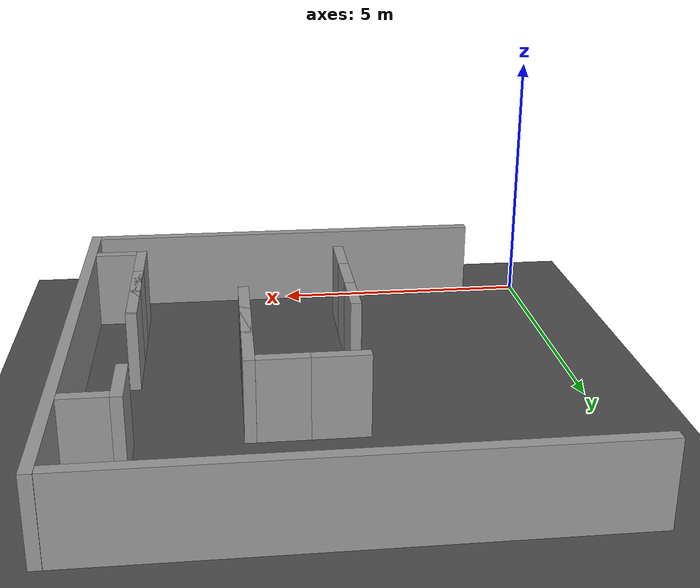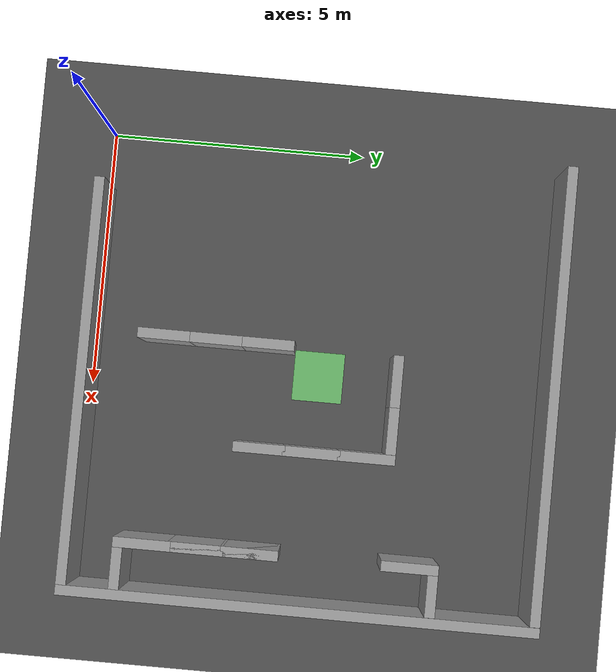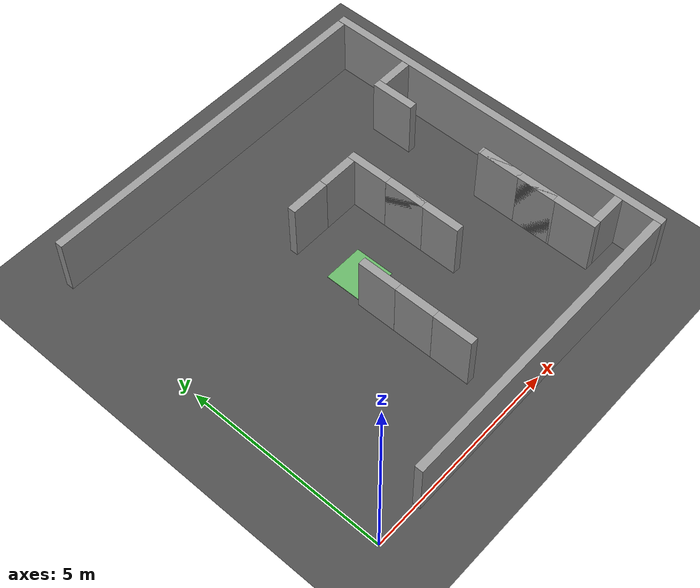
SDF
<sdf version="1.6">
 <world name="default">
  <model name="ground_plane">
   <static>1</static>
   <link name="link">
    <collision name="collision">
     <geometry><plane><normal>0 0 1</normal><size>20 20</size></plane></geometry>
     <surface><friction><ode><mu>100</mu><mu2>50</mu2></ode></friction></surface>
    </collision>
    <visual name="visual">
     <cast_shadows>0</cast_shadows>
     <geometry><plane><normal>0 0 1</normal><size>20 20</size></plane></geometry>
     <material>
      <script>
       <uri>model://asphalt_plane/materials/scripts</uri>
       <uri>model://asphalt_plane/materials/textures</uri>
       <name>vrc/asphalt</name>
      </script>
     </material>
    </visual>
   </link>
  </model>
  <model name="grey_1wall_clone">
   <static>1</static>
   <link name="link">
    <pose>0 0 0.75 0 -0 0</pose>
    <inertial>
     <mass>5</mass>
     <inertia><ixx>1</ixx><ixy>0</ixy><ixz>0</ixz><iyy>1</iyy><iyz>0</iyz><izz>1</izz></inertia>
    </inertial>
    <visual name="ModelPreview_1::link::visual_1">
     <cast_shadows>0</cast_shadows>
     <geometry><box><size>1 0.2 1.5</size></box></geometry>
     <material>
      <script>
       <uri>model://grey_wall/materials/scripts</uri>
       <uri>model://grey_wall/materials/textures</uri>
       <name>vrc/grey_wall</name>
      </script>
      <ambient>1 1 1 1</ambient>
      <diffuse>1 1 1 1</diffuse>
      <specular>0 0 0 1</specular>
      <emissive>0 0 0 1</emissive>
      <shader type="vertex"><normal_map>__default__</normal_map></shader>
     </material>
    </visual>
    <collision name="collision">
     <geometry><box><size>1 0.2 1.5</size></box></geometry>
     <surface>
      <friction>
       <ode><mu>1</mu><mu2>1</mu2><fdir1>0 0 0</fdir1><slip1>0</slip1><slip2>0</slip2></ode>
       <torsional>
        <coefficient>1</coefficient>
        <patch_radius>0</patch_radius>
        <surface_radius>0</surface_radius>
        <use_patch_radius>1</use_patch_radius>
        <ode><slip>0</slip></ode>
       </torsional>
      </friction>
      <bounce><restitution_coefficient>0</restitution_coefficient><threshold>1e+06</threshold></bounce>
      <contact>
       <collide_without_contact>0</collide_without_contact>
       <collide_without_contact_bitmask>1</collide_without_contact_bitmask>
       <collide_bitmask>1</collide_bitmask>
       <ode>
        <soft_cfm>0</soft_cfm>
        <soft_erp>0.2</soft_erp>
        <kp>1e+13</kp>
        <kd>1</kd>
        <max_vel>0.01</max_vel>
        <min_depth>0</min_depth>
       </ode>
       <bullet>
        <split_impulse>1</split_impulse>
        <split_impulse_penetration_threshold>-0.01</split_impulse_penetration_threshold>
        <soft_cfm>0</soft_cfm>
        <soft_erp>0.2</soft_erp>
        <kp>1e+13</kp>
        <kd>1</kd>
       </bullet>
      </contact>
     </surface>
    </collision>
   </link>
   <static>1</static>
   <pose>4.5 6 0 0 -0 0</pose>
  </model>
  <model name="grey_9wall">
   <static>1</static>
   <link name="link">
    <pose>0 0 0.75 0 -0 1.57</pose>
    <inertial>
     <mass>20</mass>
     <inertia><ixx>1</ixx><ixy>0</ixy><ixz>0</ixz><iyy>1</iyy><iyz>0</iyz><izz>1</izz></inertia>
    </inertial>
    <visual name="ModelPreview_1::link::visual_1">
     <cast_shadows>0</cast_shadows>
     <geometry><box><size>9.2 0.2 1.5</size></box></geometry>
     <material>
      <script>
       <uri>model://grey_wall/materials/scripts</uri>
       <uri>model://grey_wall/materials/textures</uri>
       <name>vrc/grey_wall</name>
      </script>
      <ambient>1 1 1 1</ambient>
      <diffuse>1 1 1 1</diffuse>
      <specular>0 0 0 1</specular>
      <emissive>0 0 0 1</emissive>
      <shader type="vertex"><normal_map>__default__</normal_map></shader>
     </material>
    </visual>
    <collision name="collision">
     <geometry><box><size>9.2 0.2 1.5</size></box></geometry>
     <surface>
      <friction>
       <ode><mu>1</mu><mu2>1</mu2><fdir1>0 0 0</fdir1><slip1>0</slip1><slip2>0</slip2></ode>
       <torsional>
        <coefficient>1</coefficient>
        <patch_radius>0</patch_radius>
        <surface_radius>0</surface_radius>
        <use_patch_radius>1</use_patch_radius>
        <ode><slip>0</slip></ode>
       </torsional>
      </friction>
      <bounce><restitution_coefficient>0</restitution_coefficient><threshold>1e+06</threshold></bounce>
      <contact>
       <collide_without_contact>0</collide_without_contact>
       <collide_without_contact_bitmask>1</collide_without_contact_bitmask>
       <collide_bitmask>1</collide_bitmask>
       <ode>
        <soft_cfm>0</soft_cfm>
        <soft_erp>0.2</soft_erp>
        <kp>1e+13</kp>
        <kd>1</kd>
        <max_vel>0.01</max_vel>
        <min_depth>0</min_depth>
       </ode>
       <bullet>
        <split_impulse>1</split_impulse>
        <split_impulse_penetration_threshold>-0.01</split_impulse_penetration_threshold>
        <soft_cfm>0</soft_cfm>
        <soft_erp>0.2</soft_erp>
        <kp>1e+13</kp>
        <kd>1</kd>
       </bullet>
      </contact>
     </surface>
    </collision>
   </link>
   <static>1</static>
   <pose>9 4.5 0 0 -0 0</pose>
  </model>
  <model name="grey_9wall_0_0">
   <static>1</static>
   <link name="link">
    <pose>0 0 0.75 0 -0 0</pose>
    <inertial>
     <mass>20</mass>
     <inertia><ixx>1</ixx><ixy>0</ixy><ixz>0</ixz><iyy>1</iyy><iyz>0</iyz><izz>1</izz></inertia>
    </inertial>
    <visual name="ModelPreview_1::link::visual_1">
     <cast_shadows>0</cast_shadows>
     <geometry><box><size>8.8 0.2 1.5</size></box></geometry>
     <material>
      <script>
       <uri>model://grey_wall/materials/scripts</uri>
       <uri>model://grey_wall/materials/textures</uri>
       <name>vrc/grey_wall</name>
      </script>
      <ambient>1 1 1 1</ambient>
      <diffuse>1 1 1 1</diffuse>
      <specular>0 0 0 1</specular>
      <emissive>0 0 0 1</emissive>
      <shader type="vertex"><normal_map>__default__</normal_map></shader>
     </material>
    </visual>
    <collision name="collision">
     <geometry><box><size>8.8 0.2 1.5</size></box></geometry>
     <surface>
      <friction>
       <ode><mu>1</mu><mu2>1</mu2><fdir1>0 0 0</fdir1><slip1>0</slip1><slip2>0</slip2></ode>
       <torsional>
        <coefficient>1</coefficient>
        <patch_radius>0</patch_radius>
        <surface_radius>0</surface_radius>
        <use_patch_radius>1</use_patch_radius>
        <ode><slip>0</slip></ode>
       </torsional>
      </friction>
      <bounce><restitution_coefficient>0</restitution_coefficient><threshold>1e+06</threshold></bounce>
      <contact>
       <collide_without_contact>0</collide_without_contact>
       <collide_without_contact_bitmask>1</collide_without_contact_bitmask>
       <collide_bitmask>1</collide_bitmask>
       <ode>
        <soft_cfm>0</soft_cfm>
        <soft_erp>0.2</soft_erp>
        <kp>1e+13</kp>
        <kd>1</kd>
        <max_vel>0.01</max_vel>
        <min_depth>0</min_depth>
       </ode>
       <bullet>
        <split_impulse>1</split_impulse>
        <split_impulse_penetration_threshold>-0.01</split_impulse_penetration_threshold>
        <soft_cfm>0</soft_cfm>
        <soft_erp>0.2</soft_erp>
        <kp>1e+13</kp>
        <kd>1</kd>
       </bullet>
      </contact>
     </surface>
    </collision>
   </link>
   <static>1</static>
   <pose>4.5 9 0 0 -0 0</pose>
  </model>
  <model name="grey_8wall_2">
   <static>1</static>
   <link name="link">
    <pose>0 0 0.75 0 -0 0</pose>
    <inertial>
     <mass>20</mass>
     <inertia><ixx>1</ixx><ixy>0</ixy><ixz>0</ixz><iyy>1</iyy><iyz>0</iyz><izz>1</izz></inertia>
    </inertial>
    <visual name="ModelPreview_1::link::visual_1">
     <cast_shadows>0</cast_shadows>
     <geometry><box><size>7.8 0.2 1.5</size></box></geometry>
     <material>
      <script>
       <uri>model://grey_wall/materials/scripts</uri>
       <uri>model://grey_wall/materials/textures</uri>
       <name>vrc/grey_wall</name>
      </script>
      <ambient>1 1 1 1</ambient>
      <diffuse>1 1 1 1</diffuse>
      <specular>0 0 0 1</specular>
      <emissive>0 0 0 1</emissive>
      <shader type="vertex"><normal_map>__default__</normal_map></shader>
     </material>
    </visual>
    <collision name="collision">
     <geometry><box><size>8 0.2 1.5</size></box></geometry>
     <surface>
      <friction>
       <ode><mu>1</mu><mu2>1</mu2><fdir1>0 0 0</fdir1><slip1>0</slip1><slip2>0</slip2></ode>
       <torsional>
        <coefficient>1</coefficient>
        <patch_radius>0</patch_radius>
        <surface_radius>0</surface_radius>
        <use_patch_radius>1</use_patch_radius>
        <ode><slip>0</slip></ode>
       </torsional>
      </friction>
      <bounce><restitution_coefficient>0</restitution_coefficient><threshold>1e+06</threshold></bounce>
      <contact>
       <collide_without_contact>0</collide_without_contact>
       <collide_without_contact_bitmask>1</collide_without_contact_bitmask>
       <collide_bitmask>1</collide_bitmask>
       <ode>
        <soft_cfm>0</soft_cfm>
        <soft_erp>0.2</soft_erp>
        <kp>1e+13</kp>
        <kd>1</kd>
        <max_vel>0.01</max_vel>
        <min_depth>0</min_depth>
       </ode>
       <bullet>
        <split_impulse>1</split_impulse>
        <split_impulse_penetration_threshold>-0.01</split_impulse_penetration_threshold>
        <soft_cfm>0</soft_cfm>
        <soft_erp>0.2</soft_erp>
        <kp>1e+13</kp>
        <kd>1</kd>
       </bullet>
      </contact>
     </surface>
    </collision>
   </link>
   <static>1</static>
   <pose>5 0 0 0 -0 0</pose>
  </model>
  <model name="box_goal">
   <static>1</static>
   <link name="link">
    <inertial>
     <mass>1</mass>
     <inertia>
      <ixx>0.166667</ixx>
      <ixy>0</ixy>
      <ixz>0</ixz>
      <iyy>0.166667</iyy>
      <iyz>0</iyz>
      <izz>0.166667</izz>
     </inertia>
    </inertial>
    <visual name="visual">
     <geometry><box><size>1 1 0.1</size></box></geometry>
     <material>
      <script><name>Gazebo/Grey</name><uri>file://media/materials/scripts/gazebo.material</uri></script>
      <ambient>0.3 1 0.3 1</ambient>
      <diffuse>0.4 0.7 0.4 1</diffuse>
      <specular>0.01 0.05 0.01 1</specular>
      <emissive>0 0.02 0 1</emissive>
      <shader type="vertex"><normal_map>__default__</normal_map></shader>
     </material>
    </visual>
    <collision name="collision">
     <geometry><box><size>1 1 0.1</size></box></geometry>
     <surface>
      <friction>
       <ode><mu>1</mu><mu2>1</mu2><fdir1>0 0 0</fdir1><slip1>0</slip1><slip2>0</slip2></ode>
       <torsional>
        <coefficient>1</coefficient>
        <patch_radius>0</patch_radius>
        <surface_radius>0</surface_radius>
        <use_patch_radius>1</use_patch_radius>
        <ode><slip>0</slip></ode>
       </torsional>
      </friction>
      <bounce><restitution_coefficient>0</restitution_coefficient><threshold>1e+06</threshold></bounce>
      <contact>
       <collide_without_contact>0</collide_without_contact>
       <collide_without_contact_bitmask>1</collide_without_contact_bitmask>
       <collide_bitmask>1</collide_bitmask>
       <ode>
        <soft_cfm>0</soft_cfm>
        <soft_erp>0.2</soft_erp>
        <kp>1e+13</kp>
        <kd>1</kd>
        <max_vel>0.01</max_vel>
        <min_depth>0</min_depth>
       </ode>
       <bullet>
        <split_impulse>1</split_impulse>
        <split_impulse_penetration_threshold>-0.01</split_impulse_penetration_threshold>
        <soft_cfm>0</soft_cfm>
        <soft_erp>0.2</soft_erp>
        <kp>1e+13</kp>
        <kd>1</kd>
       </bullet>
      </contact>
     </surface>
    </collision>
   </link>
   <static>0</static>
   <pose>4.5 4.5 -0.049 0 -0 0</pose>
  </model>
  <model name="grey_1wall_0_clone">
   <static>1</static>
   <link name="link">
    <pose>0 0 0.75 0 -0 0</pose>
    <inertial>
     <mass>5</mass>
     <inertia><ixx>1</ixx><ixy>0</ixy><ixz>0</ixz><iyy>1</iyy><iyz>0</iyz><izz>1</izz></inertia>
    </inertial>
    <visual name="ModelPreview_1::link::visual_1">
     <cast_shadows>0</cast_shadows>
     <geometry><box><size>0.9 0.2 1.5</size></box></geometry>
     <material>
      <script>
       <uri>model://grey_wall/materials/scripts</uri>
       <uri>model://grey_wall/materials/textures</uri>
       <name>vrc/grey_wall</name>
      </script>
      <ambient>1 1 1 1</ambient>
      <diffuse>1 1 1 1</diffuse>
      <specular>0 0 0 1</specular>
      <emissive>0 0 0 1</emissive>
      <shader type="vertex"><normal_map>__default__</normal_map></shader>
     </material>
    </visual>
    <collision name="collision">
     <geometry><box><size>0.9 0.2 1.5</size></box></geometry>
     <surface>
      <friction>
       <ode><mu>1</mu><mu2>1</mu2><fdir1>0 0 0</fdir1><slip1>0</slip1><slip2>0</slip2></ode>
       <torsional>
        <coefficient>1</coefficient>
        <patch_radius>0</patch_radius>
        <surface_radius>0</surface_radius>
        <use_patch_radius>1</use_patch_radius>
        <ode><slip>0</slip></ode>
       </torsional>
      </friction>
      <bounce><restitution_coefficient>0</restitution_coefficient><threshold>1e+06</threshold></bounce>
      <contact>
       <collide_without_contact>0</collide_without_contact>
       <collide_without_contact_bitmask>1</collide_without_contact_bitmask>
       <collide_bitmask>1</collide_bitmask>
       <ode>
        <soft_cfm>0</soft_cfm>
        <soft_erp>0.2</soft_erp>
        <kp>1e+13</kp>
        <kd>1</kd>
        <max_vel>0.01</max_vel>
        <min_depth>0</min_depth>
       </ode>
       <bullet>
        <split_impulse>1</split_impulse>
        <split_impulse_penetration_threshold>-0.01</split_impulse_penetration_threshold>
        <soft_cfm>0</soft_cfm>
        <soft_erp>0.2</soft_erp>
        <kp>1e+13</kp>
        <kd>1</kd>
       </bullet>
      </contact>
     </surface>
    </collision>
   </link>
   <static>1</static>
   <pose>5.45 6 0 0 -0 0</pose>
  </model>
  <model name="grey_1wall_90_clone_2_clone_2">
   <static>1</static>
   <link name="link">
    <pose>0 0 0.75 0 -0 0</pose>
    <inertial>
     <mass>5</mass>
     <inertia><ixx>1</ixx><ixy>0</ixy><ixz>0</ixz><iyy>1</iyy><iyz>0</iyz><izz>1</izz></inertia>
    </inertial>
    <visual name="ModelPreview_1::link::visual_1">
     <cast_shadows>0</cast_shadows>
     <geometry><box><size>1 0.2 1.5</size></box></geometry>
     <material>
      <script>
       <uri>model://grey_wall/materials/scripts</uri>
       <uri>model://grey_wall/materials/textures</uri>
       <name>vrc/grey_wall</name>
      </script>
      <ambient>1 1 1 1</ambient>
      <diffuse>1 1 1 1</diffuse>
      <specular>0 0 0 1</specular>
      <emissive>0 0 0 1</emissive>
      <shader type="vertex"><normal_map>__default__</normal_map></shader>
     </material>
    </visual>
    <collision name="collision">
     <geometry><box><size>1 0.2 1.5</size></box></geometry>
     <surface>
      <friction>
       <ode><mu>1</mu><mu2>1</mu2><fdir1>0 0 0</fdir1><slip1>0</slip1><slip2>0</slip2></ode>
       <torsional>
        <coefficient>1</coefficient>
        <patch_radius>0</patch_radius>
        <surface_radius>0</surface_radius>
        <use_patch_radius>1</use_patch_radius>
        <ode><slip>0</slip></ode>
       </torsional>
      </friction>
      <bounce><restitution_coefficient>0</restitution_coefficient><threshold>1e+06</threshold></bounce>
      <contact>
       <collide_without_contact>0</collide_without_contact>
       <collide_without_contact_bitmask>1</collide_without_contact_bitmask>
       <collide_bitmask>1</collide_bitmask>
       <ode>
        <soft_cfm>0</soft_cfm>
        <soft_erp>0.2</soft_erp>
        <kp>1e+13</kp>
        <kd>1</kd>
        <max_vel>0.01</max_vel>
        <min_depth>0</min_depth>
       </ode>
       <bullet>
        <split_impulse>1</split_impulse>
        <split_impulse_penetration_threshold>-0.01</split_impulse_penetration_threshold>
        <soft_cfm>0</soft_cfm>
        <soft_erp>0.2</soft_erp>
        <kp>1e+13</kp>
        <kd>1</kd>
       </bullet>
      </contact>
     </surface>
    </collision>
   </link>
   <static>1</static>
   <pose>4 1.5 0 0 -0 1.57</pose>
  </model>
  <model name="grey_1wall_90_clone_2_clone_3">
   <static>1</static>
   <link name="link">
    <pose>0 0 0.75 0 -0 0</pose>
    <inertial>
     <mass>5</mass>
     <inertia><ixx>1</ixx><ixy>0</ixy><ixz>0</ixz><iyy>1</iyy><iyz>0</iyz><izz>1</izz></inertia>
    </inertial>
    <visual name="ModelPreview_1::link::visual_1">
     <cast_shadows>0</cast_shadows>
     <geometry><box><size>1 0.2 1.5</size></box></geometry>
     <material>
      <script>
       <uri>model://grey_wall/materials/scripts</uri>
       <uri>model://grey_wall/materials/textures</uri>
       <name>vrc/grey_wall</name>
      </script>
      <ambient>1 1 1 1</ambient>
      <diffuse>1 1 1 1</diffuse>
      <specular>0 0 0 1</specular>
      <emissive>0 0 0 1</emissive>
      <shader type="vertex"><normal_map>__default__</normal_map></shader>
     </material>
    </visual>
    <collision name="collision">
     <geometry><box><size>1 0.2 1.5</size></box></geometry>
     <surface>
      <friction>
       <ode><mu>1</mu><mu2>1</mu2><fdir1>0 0 0</fdir1><slip1>0</slip1><slip2>0</slip2></ode>
       <torsional>
        <coefficient>1</coefficient>
        <patch_radius>0</patch_radius>
        <surface_radius>0</surface_radius>
        <use_patch_radius>1</use_patch_radius>
        <ode><slip>0</slip></ode>
       </torsional>
      </friction>
      <bounce><restitution_coefficient>0</restitution_coefficient><threshold>1e+06</threshold></bounce>
      <contact>
       <collide_without_contact>0</collide_without_contact>
       <collide_without_contact_bitmask>1</collide_without_contact_bitmask>
       <collide_bitmask>1</collide_bitmask>
       <ode>
        <soft_cfm>0</soft_cfm>
        <soft_erp>0.2</soft_erp>
        <kp>1e+13</kp>
        <kd>1</kd>
        <max_vel>0.01</max_vel>
        <min_depth>0</min_depth>
       </ode>
       <bullet>
        <split_impulse>1</split_impulse>
        <split_impulse_penetration_threshold>-0.01</split_impulse_penetration_threshold>
        <soft_cfm>0</soft_cfm>
        <soft_erp>0.2</soft_erp>
        <kp>1e+13</kp>
        <kd>1</kd>
       </bullet>
      </contact>
     </surface>
    </collision>
   </link>
   <static>1</static>
   <pose>4 2.5 0 0 -0 1.57</pose>
  </model>
  <model name="grey_1wall_90_clone_2_clone_4">
   <static>1</static>
   <link name="link">
    <pose>0 0 0.75 0 -0 0</pose>
    <inertial>
     <mass>5</mass>
     <inertia><ixx>1</ixx><ixy>0</ixy><ixz>0</ixz><iyy>1</iyy><iyz>0</iyz><izz>1</izz></inertia>
    </inertial>
    <visual name="ModelPreview_1::link::visual_1">
     <cast_shadows>0</cast_shadows>
     <geometry><box><size>1.1 0.2 1.5</size></box></geometry>
     <material>
      <script>
       <uri>model://grey_wall/materials/scripts</uri>
       <uri>model://grey_wall/materials/textures</uri>
       <name>vrc/grey_wall</name>
      </script>
      <ambient>1 1 1 1</ambient>
      <diffuse>1 1 1 1</diffuse>
      <specular>0 0 0 1</specular>
      <emissive>0 0 0 1</emissive>
      <shader type="vertex"><normal_map>__default__</normal_map></shader>
     </material>
    </visual>
    <collision name="collision">
     <geometry><box><size>1.1 0.2 1.5</size></box></geometry>
     <surface>
      <friction>
       <ode><mu>1</mu><mu2>1</mu2><fdir1>0 0 0</fdir1><slip1>0</slip1><slip2>0</slip2></ode>
       <torsional>
        <coefficient>1</coefficient>
        <patch_radius>0</patch_radius>
        <surface_radius>0</surface_radius>
        <use_patch_radius>1</use_patch_radius>
        <ode><slip>0</slip></ode>
       </torsional>
      </friction>
      <bounce><restitution_coefficient>0</restitution_coefficient><threshold>1e+06</threshold></bounce>
      <contact>
       <collide_without_contact>0</collide_without_contact>
       <collide_without_contact_bitmask>1</collide_without_contact_bitmask>
       <collide_bitmask>1</collide_bitmask>
       <ode>
        <soft_cfm>0</soft_cfm>
        <soft_erp>0.2</soft_erp>
        <kp>1e+13</kp>
        <kd>1</kd>
        <max_vel>0.01</max_vel>
        <min_depth>0</min_depth>
       </ode>
       <bullet>
        <split_impulse>1</split_impulse>
        <split_impulse_penetration_threshold>-0.01</split_impulse_penetration_threshold>
        <soft_cfm>0</soft_cfm>
        <soft_erp>0.2</soft_erp>
        <kp>1e+13</kp>
        <kd>1</kd>
       </bullet>
      </contact>
     </surface>
    </collision>
   </link>
   <static>1</static>
   <pose>6 5.55 0 0 -0 1.57</pose>
  </model>
  <model name="grey_1wall_90_clone_2_clone_6">
   <static>1</static>
   <link name="link">
    <pose>0 0 0.75 0 -0 0</pose>
    <inertial>
     <mass>5</mass>
     <inertia><ixx>1</ixx><ixy>0</ixy><ixz>0</ixz><iyy>1</iyy><iyz>0</iyz><izz>1</izz></inertia>
    </inertial>
    <visual name="ModelPreview_1::link::visual_1">
     <cast_shadows>0</cast_shadows>
     <geometry><box><size>1 0.2 1.5</size></box></geometry>
     <material>
      <script>
       <uri>model://grey_wall/materials/scripts</uri>
       <uri>model://grey_wall/materials/textures</uri>
       <name>vrc/grey_wall</name>
      </script>
      <ambient>1 1 1 1</ambient>
      <diffuse>1 1 1 1</diffuse>
      <specular>0 0 0 1</specular>
      <emissive>0 0 0 1</emissive>
      <shader type="vertex"><normal_map>__default__</normal_map></shader>
     </material>
    </visual>
    <collision name="collision">
     <geometry><box><size>1 0.2 1.5</size></box></geometry>
     <surface>
      <friction>
       <ode><mu>1</mu><mu2>1</mu2><fdir1>0 0 0</fdir1><slip1>0</slip1><slip2>0</slip2></ode>
       <torsional>
        <coefficient>1</coefficient>
        <patch_radius>0</patch_radius>
        <surface_radius>0</surface_radius>
        <use_patch_radius>1</use_patch_radius>
        <ode><slip>0</slip></ode>
       </torsional>
      </friction>
      <bounce><restitution_coefficient>0</restitution_coefficient><threshold>1e+06</threshold></bounce>
      <contact>
       <collide_without_contact>0</collide_without_contact>
       <collide_without_contact_bitmask>1</collide_without_contact_bitmask>
       <collide_bitmask>1</collide_bitmask>
       <ode>
        <soft_cfm>0</soft_cfm>
        <soft_erp>0.2</soft_erp>
        <kp>1e+13</kp>
        <kd>1</kd>
        <max_vel>0.01</max_vel>
        <min_depth>0</min_depth>
       </ode>
       <bullet>
        <split_impulse>1</split_impulse>
        <split_impulse_penetration_threshold>-0.01</split_impulse_penetration_threshold>
        <soft_cfm>0</soft_cfm>
        <soft_erp>0.2</soft_erp>
        <kp>1e+13</kp>
        <kd>1</kd>
       </bullet>
      </contact>
     </surface>
    </collision>
   </link>
   <static>1</static>
   <pose>6 3.5 0 0 -0 1.57</pose>
  </model>
  <model name="grey_1wall_90_clone_2_clone_7">
   <static>1</static>
   <link name="link">
    <pose>0 0 0.75 0 -0 0</pose>
    <inertial>
     <mass>5</mass>
     <inertia><ixx>1</ixx><ixy>0</ixy><ixz>0</ixz><iyy>1</iyy><iyz>0</iyz><izz>1</izz></inertia>
    </inertial>
    <visual name="ModelPreview_1::link::visual_1">
     <cast_shadows>0</cast_shadows>
     <geometry><box><size>1.1 0.2 1.5</size></box></geometry>
     <material>
      <script>
       <uri>model://grey_wall/materials/scripts</uri>
       <uri>model://grey_wall/materials/textures</uri>
       <name>vrc/grey_wall</name>
      </script>
      <ambient>1 1 1 1</ambient>
      <diffuse>1 1 1 1</diffuse>
      <specular>0 0 0 1</specular>
      <emissive>0 0 0 1</emissive>
      <shader type="vertex"><normal_map>__default__</normal_map></shader>
     </material>
    </visual>
    <collision name="collision">
     <geometry><box><size>1.1 0.2 1.5</size></box></geometry>
     <surface>
      <friction>
       <ode><mu>1</mu><mu2>1</mu2><fdir1>0 0 0</fdir1><slip1>0</slip1><slip2>0</slip2></ode>
       <torsional>
        <coefficient>1</coefficient>
        <patch_radius>0</patch_radius>
        <surface_radius>0</surface_radius>
        <use_patch_radius>1</use_patch_radius>
        <ode><slip>0</slip></ode>
       </torsional>
      </friction>
      <bounce><restitution_coefficient>0</restitution_coefficient><threshold>1e+06</threshold></bounce>
      <contact>
       <collide_without_contact>0</collide_without_contact>
       <collide_without_contact_bitmask>1</collide_without_contact_bitmask>
       <collide_bitmask>1</collide_bitmask>
       <ode>
        <soft_cfm>0</soft_cfm>
        <soft_erp>0.2</soft_erp>
        <kp>1e+13</kp>
        <kd>1</kd>
        <max_vel>0.01</max_vel>
        <min_depth>0</min_depth>
       </ode>
       <bullet>
        <split_impulse>1</split_impulse>
        <split_impulse_penetration_threshold>-0.01</split_impulse_penetration_threshold>
        <soft_cfm>0</soft_cfm>
        <soft_erp>0.2</soft_erp>
        <kp>1e+13</kp>
        <kd>1</kd>
       </bullet>
      </contact>
     </surface>
    </collision>
   </link>
   <static>1</static>
   <pose>8 6.55 0 0 -0 1.57</pose>
  </model>
  <model name="grey_1wall_90_clone_2_clone_10">
   <static>1</static>
   <link name="link">
    <pose>0 0 0.75 0 -0 0</pose>
    <inertial>
     <mass>5</mass>
     <inertia><ixx>1</ixx><ixy>0</ixy><ixz>0</ixz><iyy>1</iyy><iyz>0</iyz><izz>1</izz></inertia>
    </inertial>
    <visual name="ModelPreview_1::link::visual_1">
     <cast_shadows>0</cast_shadows>
     <geometry><box><size>1.1 0.2 1.5</size></box></geometry>
     <material>
      <script>
       <uri>model://grey_wall/materials/scripts</uri>
       <uri>model://grey_wall/materials/textures</uri>
       <name>vrc/grey_wall</name>
      </script>
      <ambient>1 1 1 1</ambient>
      <diffuse>1 1 1 1</diffuse>
      <specular>0 0 0 1</specular>
      <emissive>0 0 0 1</emissive>
      <shader type="vertex"><normal_map>__default__</normal_map></shader>
     </material>
    </visual>
    <collision name="collision">
     <geometry><box><size>1.1 0.2 1.5</size></box></geometry>
     <surface>
      <friction>
       <ode><mu>1</mu><mu2>1</mu2><fdir1>0 0 0</fdir1><slip1>0</slip1><slip2>0</slip2></ode>
       <torsional>
        <coefficient>1</coefficient>
        <patch_radius>0</patch_radius>
        <surface_radius>0</surface_radius>
        <use_patch_radius>1</use_patch_radius>
        <ode><slip>0</slip></ode>
       </torsional>
      </friction>
      <bounce><restitution_coefficient>0</restitution_coefficient><threshold>1e+06</threshold></bounce>
      <contact>
       <collide_without_contact>0</collide_without_contact>
       <collide_without_contact_bitmask>1</collide_without_contact_bitmask>
       <collide_bitmask>1</collide_bitmask>
       <ode>
        <soft_cfm>0</soft_cfm>
        <soft_erp>0.2</soft_erp>
        <kp>1e+13</kp>
        <kd>1</kd>
        <max_vel>0.01</max_vel>
        <min_depth>0</min_depth>
       </ode>
       <bullet>
        <split_impulse>1</split_impulse>
        <split_impulse_penetration_threshold>-0.01</split_impulse_penetration_threshold>
        <soft_cfm>0</soft_cfm>
        <soft_erp>0.2</soft_erp>
        <kp>1e+13</kp>
        <kd>1</kd>
       </bullet>
      </contact>
     </surface>
    </collision>
   </link>
   <static>1</static>
   <pose>8 1.45 0 0 -0 1.57</pose>
  </model>
  <model name="grey_1wall_clone_clone">
   <static>1</static>
   <link name="link">
    <pose>0 0 0.75 0 -0 0</pose>
    <inertial>
     <mass>5</mass>
     <inertia><ixx>1</ixx><ixy>0</ixy><ixz>0</ixz><iyy>1</iyy><iyz>0</iyz><izz>1</izz></inertia>
    </inertial>
    <visual name="ModelPreview_1::link::visual_1">
     <cast_shadows>0</cast_shadows>
     <geometry><box><size>0.8 0.2 1.5</size></box></geometry>
     <material>
      <script>
       <uri>model://grey_wall/materials/scripts</uri>
       <uri>model://grey_wall/materials/textures</uri>
       <name>vrc/grey_wall</name>
      </script>
      <ambient>1 1 1 1</ambient>
      <diffuse>1 1 1 1</diffuse>
      <specular>0 0 0 1</specular>
      <emissive>0 0 0 1</emissive>
      <shader type="vertex"><normal_map>__default__</normal_map></shader>
     </material>
    </visual>
    <collision name="collision">
     <geometry><box><size>0.8 0.2 1.5</size></box></geometry>
     <surface>
      <friction>
       <ode><mu>1</mu><mu2>1</mu2><fdir1>0 0 0</fdir1><slip1>0</slip1><slip2>0</slip2></ode>
       <torsional>
        <coefficient>1</coefficient>
        <patch_radius>0</patch_radius>
        <surface_radius>0</surface_radius>
        <use_patch_radius>1</use_patch_radius>
        <ode><slip>0</slip></ode>
       </torsional>
      </friction>
      <bounce><restitution_coefficient>0</restitution_coefficient><threshold>1e+06</threshold></bounce>
      <contact>
       <collide_without_contact>0</collide_without_contact>
       <collide_without_contact_bitmask>1</collide_without_contact_bitmask>
       <collide_bitmask>1</collide_bitmask>
       <ode>
        <soft_cfm>0</soft_cfm>
        <soft_erp>0.2</soft_erp>
        <kp>1e+13</kp>
        <kd>1</kd>
        <max_vel>0.01</max_vel>
        <min_depth>0</min_depth>
       </ode>
       <bullet>
        <split_impulse>1</split_impulse>
        <split_impulse_penetration_threshold>-0.01</split_impulse_penetration_threshold>
        <soft_cfm>0</soft_cfm>
        <soft_erp>0.2</soft_erp>
        <kp>1e+13</kp>
        <kd>1</kd>
       </bullet>
      </contact>
     </surface>
    </collision>
   </link>
   <static>1</static>
   <pose>8.5 7 0 0 -0 0</pose>
  </model>
  <model name="grey_1wall_clone_clone_0">
   <static>1</static>
   <link name="link">
    <pose>0 0 0.75 0 -0 0</pose>
    <inertial>
     <mass>5</mass>
     <inertia><ixx>1</ixx><ixy>0</ixy><ixz>0</ixz><iyy>1</iyy><iyz>0</iyz><izz>1</izz></inertia>
    </inertial>
    <visual name="ModelPreview_1::link::visual_1">
     <cast_shadows>0</cast_shadows>
     <geometry><box><size>0.8 0.2 1.5</size></box></geometry>
     <material>
      <script>
       <uri>model://grey_wall/materials/scripts</uri>
       <uri>model://grey_wall/materials/textures</uri>
       <name>vrc/grey_wall</name>
      </script>
      <ambient>1 1 1 1</ambient>
      <diffuse>1 1 1 1</diffuse>
      <specular>0 0 0 1</specular>
      <emissive>0 0 0 1</emissive>
      <shader type="vertex"><normal_map>__default__</normal_map></shader>
     </material>
    </visual>
    <collision name="collision">
     <geometry><box><size>0.8 0.2 1.5</size></box></geometry>
     <surface>
      <friction>
       <ode><mu>1</mu><mu2>1</mu2><fdir1>0 0 0</fdir1><slip1>0</slip1><slip2>0</slip2></ode>
       <torsional>
        <coefficient>1</coefficient>
        <patch_radius>0</patch_radius>
        <surface_radius>0</surface_radius>
        <use_patch_radius>1</use_patch_radius>
        <ode><slip>0</slip></ode>
       </torsional>
      </friction>
      <bounce><restitution_coefficient>0</restitution_coefficient><threshold>1e+06</threshold></bounce>
      <contact>
       <collide_without_contact>0</collide_without_contact>
       <collide_without_contact_bitmask>1</collide_without_contact_bitmask>
       <collide_bitmask>1</collide_bitmask>
       <ode>
        <soft_cfm>0</soft_cfm>
        <soft_erp>0.2</soft_erp>
        <kp>1e+13</kp>
        <kd>1</kd>
        <max_vel>0.01</max_vel>
        <min_depth>0</min_depth>
       </ode>
       <bullet>
        <split_impulse>1</split_impulse>
        <split_impulse_penetration_threshold>-0.01</split_impulse_penetration_threshold>
        <soft_cfm>0</soft_cfm>
        <soft_erp>0.2</soft_erp>
        <kp>1e+13</kp>
        <kd>1</kd>
       </bullet>
      </contact>
     </surface>
    </collision>
   </link>
   <static>1</static>
   <pose>8.5 1 0 0 -0 0</pose>
  </model>
  <model name="grey_1wall_90_clone_2_clone_3_clone">
   <static>1</static>
   <link name="link">
    <pose>0 0 0.75 0 -0 0</pose>
    <inertial>
     <mass>5</mass>
     <inertia><ixx>1</ixx><ixy>0</ixy><ixz>0</ixz><iyy>1</iyy><iyz>0</iyz><izz>1</izz></inertia>
    </inertial>
    <visual name="ModelPreview_1::link::visual_1">
     <cast_shadows>0</cast_shadows>
     <geometry><box><size>1 0.2 1.5</size></box></geometry>
     <material>
      <script>
       <uri>model://grey_wall/materials/scripts</uri>
       <uri>model://grey_wall/materials/textures</uri>
       <name>vrc/grey_wall</name>
      </script>
      <ambient>1 1 1 1</ambient>
      <diffuse>1 1 1 1</diffuse>
      <specular>0 0 0 1</specular>
      <emissive>0 0 0 1</emissive>
      <shader type="vertex"><normal_map>__default__</normal_map></shader>
     </material>
    </visual>
    <collision name="collision">
     <geometry><box><size>1 0.2 1.5</size></box></geometry>
     <surface>
      <friction>
       <ode><mu>1</mu><mu2>1</mu2><fdir1>0 0 0</fdir1><slip1>0</slip1><slip2>0</slip2></ode>
       <torsional>
        <coefficient>1</coefficient>
        <patch_radius>0</patch_radius>
        <surface_radius>0</surface_radius>
        <use_patch_radius>1</use_patch_radius>
        <ode><slip>0</slip></ode>
       </torsional>
      </friction>
      <bounce><restitution_coefficient>0</restitution_coefficient><threshold>1e+06</threshold></bounce>
      <contact>
       <collide_without_contact>0</collide_without_contact>
       <collide_without_contact_bitmask>1</collide_without_contact_bitmask>
       <collide_bitmask>1</collide_bitmask>
       <ode>
        <soft_cfm>0</soft_cfm>
        <soft_erp>0.2</soft_erp>
        <kp>1e+13</kp>
        <kd>1</kd>
        <max_vel>0.01</max_vel>
        <min_depth>0</min_depth>
       </ode>
       <bullet>
        <split_impulse>1</split_impulse>
        <split_impulse_penetration_threshold>-0.01</split_impulse_penetration_threshold>
        <soft_cfm>0</soft_cfm>
        <soft_erp>0.2</soft_erp>
        <kp>1e+13</kp>
        <kd>1</kd>
       </bullet>
      </contact>
     </surface>
    </collision>
   </link>
   <static>1</static>
   <pose>4 3.5 0 0 -0 1.57</pose>
  </model>
  <model name="grey_1wall_90_std">
   <static>1</static>
   <link name="link">
    <pose>0 0 0.75 0 -0 0</pose>
    <inertial>
     <mass>5</mass>
     <inertia><ixx>1</ixx><ixy>0</ixy><ixz>0</ixz><iyy>1</iyy><iyz>0</iyz><izz>1</izz></inertia>
    </inertial>
    <visual name="ModelPreview_12::link::visual_3">
     <cast_shadows>0</cast_shadows>
     <geometry><box><size>1 0.2 1.5</size></box></geometry>
     <material>
      <script>
       <uri>model://grey_wall/materials/scripts</uri>
       <uri>model://grey_wall/materials/textures</uri>
       <name>vrc/grey_wall</name>
      </script>
      <ambient>1 1 1 1</ambient>
      <diffuse>1 1 1 1</diffuse>
      <specular>0 0 0 1</specular>
      <emissive>0 0 0 1</emissive>
      <shader type="vertex"><normal_map>__default__</normal_map></shader>
     </material>
    </visual>
    <visual name="ModelPreview_12::link::visual_4">
     <cast_shadows>0</cast_shadows>
     <geometry><box><size>1 0.2 1.5</size></box></geometry>
     <material>
      <script>
       <uri>model://grey_wall/materials/scripts</uri>
       <uri>model://grey_wall/materials/textures</uri>
       <name>vrc/grey_wall</name>
      </script>
      <ambient>1 1 1 1</ambient>
      <diffuse>1 1 1 1</diffuse>
      <specular>0 0 0 1</specular>
      <emissive>0 0 0 1</emissive>
      <shader type="vertex"><normal_map>__default__</normal_map></shader>
     </material>
    </visual>
    <visual name="ModelPreview_12::link::visual_1">
     <cast_shadows>0</cast_shadows>
     <geometry><box><size>1 0.2 1.5</size></box></geometry>
     <material>
      <script>
       <uri>model://grey_wall/materials/scripts</uri>
       <uri>model://grey_wall/materials/textures</uri>
       <name>vrc/grey_wall</name>
      </script>
      <ambient>1 1 1 1</ambient>
      <diffuse>1 1 1 1</diffuse>
      <specular>0 0 0 1</specular>
      <emissive>0 0 0 1</emissive>
      <shader type="vertex"><normal_map>__default__</normal_map></shader>
     </material>
    </visual>
    <visual name="ModelPreview_1::link::visual_1">
     <cast_shadows>0</cast_shadows>
     <geometry><box><size>1.1 0.2 1.5</size></box></geometry>
     <material>
      <script>
       <uri>model://grey_wall/materials/scripts</uri>
       <uri>model://grey_wall/materials/textures</uri>
       <name>vrc/grey_wall</name>
      </script>
      <ambient>1 1 1 1</ambient>
      <diffuse>1 1 1 1</diffuse>
      <specular>0 0 0 1</specular>
      <emissive>0 0 0 1</emissive>
      <shader type="vertex"><normal_map>__default__</normal_map></shader>
     </material>
    </visual>
    <visual name="ModelPreview_12::link::visual_2">
     <cast_shadows>0</cast_shadows>
     <geometry><box><size>1.1 0.2 1.5</size></box></geometry>
     <material>
      <script>
       <uri>model://grey_wall/materials/scripts</uri>
       <uri>model://grey_wall/materials/textures</uri>
       <name>vrc/grey_wall</name>
      </script>
      <ambient>1 1 1 1</ambient>
      <diffuse>1 1 1 1</diffuse>
      <specular>0 0 0 1</specular>
      <emissive>0 0 0 1</emissive>
      <shader type="vertex"><normal_map>__default__</normal_map></shader>
     </material>
    </visual>
    <collision name="collision">
     <geometry><box><size>1 0.2 1.5</size></box></geometry>
     <surface>
      <friction>
       <ode><mu>1</mu><mu2>1</mu2><fdir1>0 0 0</fdir1><slip1>0</slip1><slip2>0</slip2></ode>
       <torsional>
        <coefficient>1</coefficient>
        <patch_radius>0</patch_radius>
        <surface_radius>0</surface_radius>
        <use_patch_radius>1</use_patch_radius>
        <ode><slip>0</slip></ode>
       </torsional>
      </friction>
      <bounce><restitution_coefficient>0</restitution_coefficient><threshold>1e+06</threshold></bounce>
      <contact>
       <collide_without_contact>0</collide_without_contact>
       <collide_without_contact_bitmask>1</collide_without_contact_bitmask>
       <collide_bitmask>1</collide_bitmask>
       <ode>
        <soft_cfm>0</soft_cfm>
        <soft_erp>0.2</soft_erp>
        <kp>1e+13</kp>
        <kd>1</kd>
        <max_vel>0.01</max_vel>
        <min_depth>0</min_depth>
       </ode>
       <bullet>
        <split_impulse>1</split_impulse>
        <split_impulse_penetration_threshold>-0.01</split_impulse_penetration_threshold>
        <soft_cfm>0</soft_cfm>
        <soft_erp>0.2</soft_erp>
        <kp>1e+13</kp>
        <kd>1</kd>
       </bullet>
      </contact>
     </surface>
    </collision>
   </link>
   <static>1</static>
   <pose>6 4.5 0 0 -0 1.57</pose>
  </model>
  <model name="grey_1wall_90_std_clone">
   <static>1</static>
   <link name="link">
    <pose>0 0 0.75 0 -0 0</pose>
    <inertial>
     <mass>5</mass>
     <inertia><ixx>1</ixx><ixy>0</ixy><ixz>0</ixz><iyy>1</iyy><iyz>0</iyz><izz>1</izz></inertia>
    </inertial>
    <visual name="ModelPreview_12::link::visual_3">
     <cast_shadows>0</cast_shadows>
     <geometry><box><size>1.1 0.2 1.5</size></box></geometry>
     <material>
      <script>
       <uri>model://grey_wall/materials/scripts</uri>
       <uri>model://grey_wall/materials/textures</uri>
       <name>vrc/grey_wall</name>
      </script>
      <ambient>1 1 1 1</ambient>
      <diffuse>1 1 1 1</diffuse>
      <specular>0 0 0 1</specular>
      <emissive>0 0 0 1</emissive>
      <shader type="vertex"><normal_map>__default__</normal_map></shader>
     </material>
    </visual>
    <visual name="ModelPreview_12::link::visual_4">
     <cast_shadows>0</cast_shadows>
     <geometry><box><size>1.1 0.2 1.5</size></box></geometry>
     <material>
      <script>
       <uri>model://grey_wall/materials/scripts</uri>
       <uri>model://grey_wall/materials/textures</uri>
       <name>vrc/grey_wall</name>
      </script>
      <ambient>1 1 1 1</ambient>
      <diffuse>1 1 1 1</diffuse>
      <specular>0 0 0 1</specular>
      <emissive>0 0 0 1</emissive>
      <shader type="vertex"><normal_map>__default__</normal_map></shader>
     </material>
    </visual>
    <visual name="ModelPreview_12::link::visual_1">
     <cast_shadows>0</cast_shadows>
     <geometry><box><size>1 0.2 1.5</size></box></geometry>
     <material>
      <script>
       <uri>model://grey_wall/materials/scripts</uri>
       <uri>model://grey_wall/materials/textures</uri>
       <name>vrc/grey_wall</name>
      </script>
      <ambient>1 1 1 1</ambient>
      <diffuse>1 1 1 1</diffuse>
      <specular>0 0 0 1</specular>
      <emissive>0 0 0 1</emissive>
      <shader type="vertex"><normal_map>__default__</normal_map></shader>
     </material>
    </visual>
    <visual name="ModelPreview_1::link::visual_1">
     <cast_shadows>0</cast_shadows>
     <geometry><box><size>1.1 0.2 1.5</size></box></geometry>
     <material>
      <script>
       <uri>model://grey_wall/materials/scripts</uri>
       <uri>model://grey_wall/materials/textures</uri>
       <name>vrc/grey_wall</name>
      </script>
      <ambient>1 1 1 1</ambient>
      <diffuse>1 1 1 1</diffuse>
      <specular>0 0 0 1</specular>
      <emissive>0 0 0 1</emissive>
      <shader type="vertex"><normal_map>__default__</normal_map></shader>
     </material>
    </visual>
    <visual name="ModelPreview_12::link::visual_2">
     <cast_shadows>0</cast_shadows>
     <geometry><box><size>1.1 0.2 1.5</size></box></geometry>
     <material>
      <script>
       <uri>model://grey_wall/materials/scripts</uri>
       <uri>model://grey_wall/materials/textures</uri>
       <name>vrc/grey_wall</name>
      </script>
      <ambient>1 1 1 1</ambient>
      <diffuse>1 1 1 1</diffuse>
      <specular>0 0 0 1</specular>
      <emissive>0 0 0 1</emissive>
      <shader type="vertex"><normal_map>__default__</normal_map></shader>
     </material>
    </visual>
    <collision name="collision">
     <geometry><box><size>1 0.2 1.5</size></box></geometry>
     <surface>
      <friction>
       <ode><mu>1</mu><mu2>1</mu2><fdir1>0 0 0</fdir1><slip1>0</slip1><slip2>0</slip2></ode>
       <torsional>
        <coefficient>1</coefficient>
        <patch_radius>0</patch_radius>
        <surface_radius>0</surface_radius>
        <use_patch_radius>1</use_patch_radius>
        <ode><slip>0</slip></ode>
       </torsional>
      </friction>
      <bounce><restitution_coefficient>0</restitution_coefficient><threshold>1e+06</threshold></bounce>
      <contact>
       <collide_without_contact>0</collide_without_contact>
       <collide_without_contact_bitmask>1</collide_without_contact_bitmask>
       <collide_bitmask>1</collide_bitmask>
       <ode>
        <soft_cfm>0</soft_cfm>
        <soft_erp>0.2</soft_erp>
        <kp>1e+13</kp>
        <kd>1</kd>
        <max_vel>0.01</max_vel>
        <min_depth>0</min_depth>
       </ode>
       <bullet>
        <split_impulse>1</split_impulse>
        <split_impulse_penetration_threshold>-0.01</split_impulse_penetration_threshold>
        <soft_cfm>0</soft_cfm>
        <soft_erp>0.2</soft_erp>
        <kp>1e+13</kp>
        <kd>1</kd>
       </bullet>
      </contact>
     </surface>
    </collision>
   </link>
   <static>1</static>
   <pose>8 2.5 0 0 -0 1.57</pose>
  </model>
  <model name="grey_1wall_90_std_clone_0">
   <static>1</static>
   <link name="link">
    <pose>0 0 0.75 0 -0 0</pose>
    <inertial>
     <mass>5</mass>
     <inertia><ixx>1</ixx><ixy>0</ixy><ixz>0</ixz><iyy>1</iyy><iyz>0</iyz><izz>1</izz></inertia>
    </inertial>
    <visual name="ModelPreview_12::link::visual_3">
     <cast_shadows>0</cast_shadows>
     <geometry><box><size>1 0.2 1.5</size></box></geometry>
     <material>
      <script>
       <uri>model://grey_wall/materials/scripts</uri>
       <uri>model://grey_wall/materials/textures</uri>
       <name>vrc/grey_wall</name>
      </script>
      <ambient>1 1 1 1</ambient>
      <diffuse>1 1 1 1</diffuse>
      <specular>0 0 0 1</specular>
      <emissive>0 0 0 1</emissive>
      <shader type="vertex"><normal_map>__default__</normal_map></shader>
     </material>
    </visual>
    <visual name="ModelPreview_12::link::visual_4">
     <cast_shadows>0</cast_shadows>
     <geometry><box><size>1 0.2 1.5</size></box></geometry>
     <material>
      <script>
       <uri>model://grey_wall/materials/scripts</uri>
       <uri>model://grey_wall/materials/textures</uri>
       <name>vrc/grey_wall</name>
      </script>
      <ambient>1 1 1 1</ambient>
      <diffuse>1 1 1 1</diffuse>
      <specular>0 0 0 1</specular>
      <emissive>0 0 0 1</emissive>
      <shader type="vertex"><normal_map>__default__</normal_map></shader>
     </material>
    </visual>
    <visual name="ModelPreview_12::link::visual_1">
     <cast_shadows>0</cast_shadows>
     <geometry><box><size>1 0.2 1.5</size></box></geometry>
     <material>
      <script>
       <uri>model://grey_wall/materials/scripts</uri>
       <uri>model://grey_wall/materials/textures</uri>
       <name>vrc/grey_wall</name>
      </script>
      <ambient>1 1 1 1</ambient>
      <diffuse>1 1 1 1</diffuse>
      <specular>0 0 0 1</specular>
      <emissive>0 0 0 1</emissive>
      <shader type="vertex"><normal_map>__default__</normal_map></shader>
     </material>
    </visual>
    <visual name="ModelPreview_1::link::visual_1">
     <cast_shadows>0</cast_shadows>
     <geometry><box><size>1.1 0.2 1.5</size></box></geometry>
     <material>
      <script>
       <uri>model://grey_wall/materials/scripts</uri>
       <uri>model://grey_wall/materials/textures</uri>
       <name>vrc/grey_wall</name>
      </script>
      <ambient>1 1 1 1</ambient>
      <diffuse>1 1 1 1</diffuse>
      <specular>0 0 0 1</specular>
      <emissive>0 0 0 1</emissive>
      <shader type="vertex"><normal_map>__default__</normal_map></shader>
     </material>
    </visual>
    <visual name="ModelPreview_12::link::visual_2">
     <cast_shadows>0</cast_shadows>
     <geometry><box><size>1.1 0.2 1.5</size></box></geometry>
     <material>
      <script>
       <uri>model://grey_wall/materials/scripts</uri>
       <uri>model://grey_wall/materials/textures</uri>
       <name>vrc/grey_wall</name>
      </script>
      <ambient>1 1 1 1</ambient>
      <diffuse>1 1 1 1</diffuse>
      <specular>0 0 0 1</specular>
      <emissive>0 0 0 1</emissive>
      <shader type="vertex"><normal_map>__default__</normal_map></shader>
     </material>
    </visual>
    <collision name="collision">
     <geometry><box><size>1 0.2 1.5</size></box></geometry>
     <surface>
      <friction>
       <ode><mu>1</mu><mu2>1</mu2><fdir1>0 0 0</fdir1><slip1>0</slip1><slip2>0</slip2></ode>
       <torsional>
        <coefficient>1</coefficient>
        <patch_radius>0</patch_radius>
        <surface_radius>0</surface_radius>
        <use_patch_radius>1</use_patch_radius>
        <ode><slip>0</slip></ode>
       </torsional>
      </friction>
      <bounce><restitution_coefficient>0</restitution_coefficient><threshold>1e+06</threshold></bounce>
      <contact>
       <collide_without_contact>0</collide_without_contact>
       <collide_without_contact_bitmask>1</collide_without_contact_bitmask>
       <collide_bitmask>1</collide_bitmask>
       <ode>
        <soft_cfm>0</soft_cfm>
        <soft_erp>0.2</soft_erp>
        <kp>1e+13</kp>
        <kd>1</kd>
        <max_vel>0.01</max_vel>
        <min_depth>0</min_depth>
       </ode>
       <bullet>
        <split_impulse>1</split_impulse>
        <split_impulse_penetration_threshold>-0.01</split_impulse_penetration_threshold>
        <soft_cfm>0</soft_cfm>
        <soft_erp>0.2</soft_erp>
        <kp>1e+13</kp>
        <kd>1</kd>
       </bullet>
      </contact>
     </surface>
    </collision>
   </link>
   <static>1</static>
   <pose>8 3.5 0 0 -0 1.57</pose>
  </model>
 </world>
</sdf>
